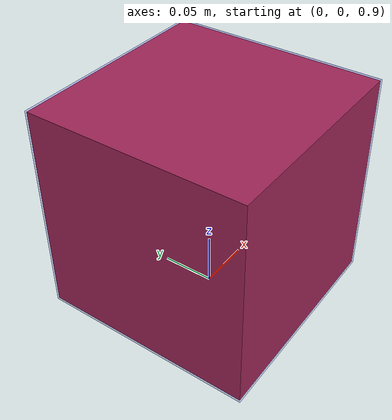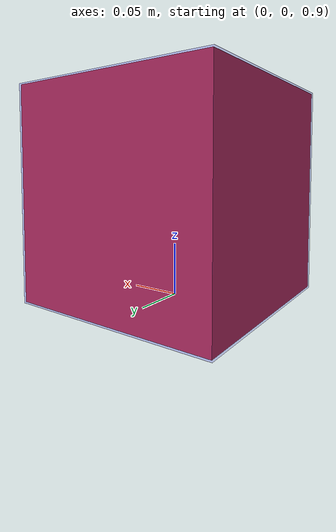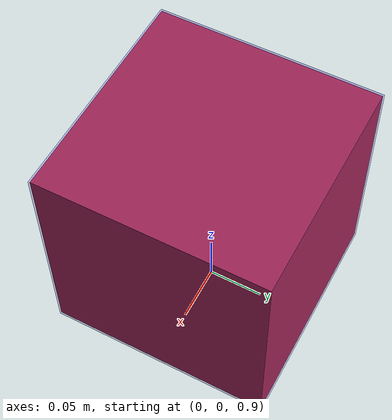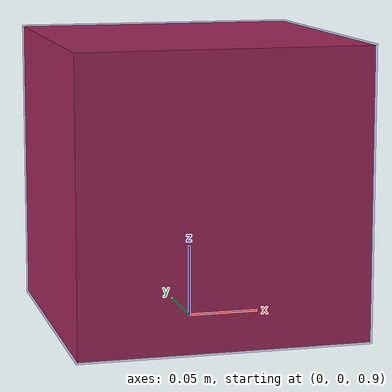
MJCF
<mujoco>
  <worldbody>
    <!-- NEW: An infinite ground plane -->
    <geom name="floor" type="plane" size="0 0 1" rgba="0.5 0.5 0.5 1"/>

    <body name="falling_box" pos="0 0 1">
      <joint name="box_joint" type="slide" axis="0 0 1"/>
      <geom type="box" size="0.1 0.1 0.1" rgba="0.8 0.2 0.2 1" mass="1.0"/>

      <!-- NEW: A site defining the active zone for our touch sensor -->
      <site name="box_touch_zone" type="box" size="0.101 0.101 0.101" rgba="0 0 1 0.1"/>
    </body>
  </worldbody>

  <sensor>
    <framepos name="box_position" objtype="body" objname="falling_box"/>
    <framelinvel name="box_velocity" objtype="body" objname="falling_box"/>

    <!-- NEW: A touch sensor measuring normal force inside the site -->
    <touch name="box_touch" site="box_touch_zone"/>
  </sensor>

  <actuator>
    <motor name="box_motor" joint="box_joint"/>
  </actuator>
</mujoco>
